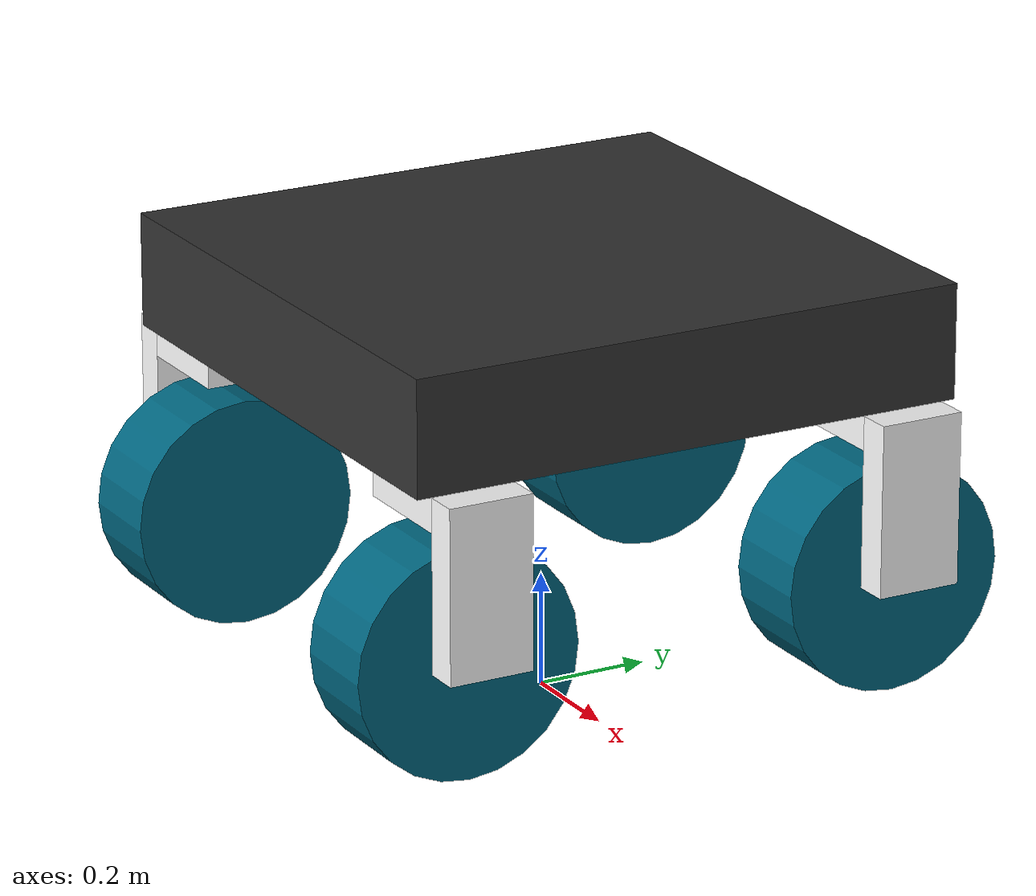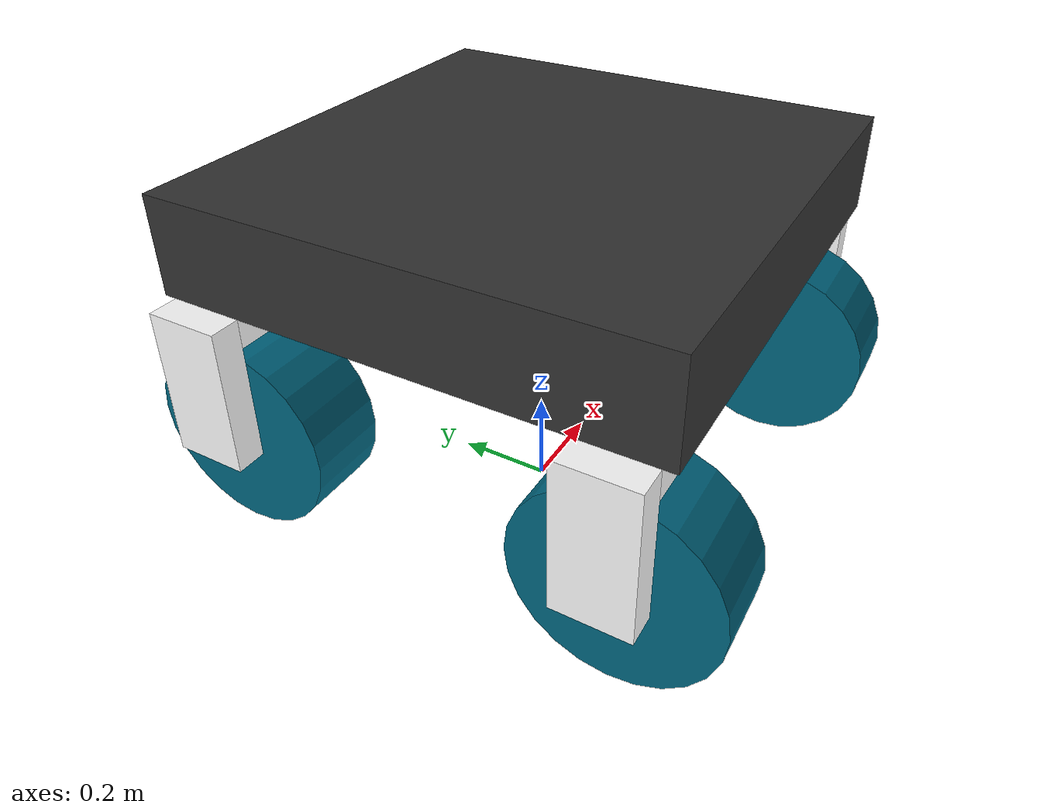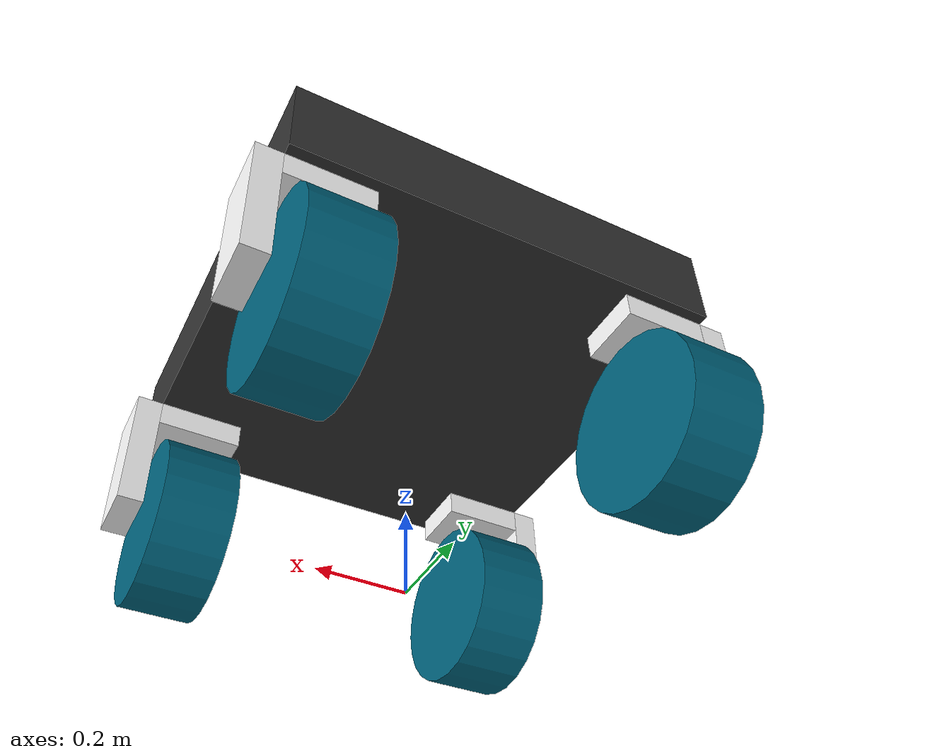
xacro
<?xml version="1.0"?>

<robot name="rover2" xmlns:xacro="http://www.ros.org/wiki/xacro" >
    <xacro:property name="r" value="0.2"/>
    <xacro:property name="h" value="0.2"/>
    <xacro:property name="wheel_mass" value="10"/>
    <xacro:property name="motor_mass" value="3"/>
    <xacro:property name="wheel_support1_length" value="0.3"/>
    <xacro:property name="wheel_support2_length" value="0.2"/>
    <xacro:property name="chassis_length" value="1"/>
    <xacro:property name="pi" value="3.1415926535897931"/>
    <xacro:property name="orientation_part_1" value="${pi/2} 0 ${pi/2}"/>
    <xacro:property name="orientation_part_2" value="0 0 ${pi/2}"/>
    <xacro:property name="wheel_orientation" value="0 0 ${pi/2}"/>

    <link name="base_link">
        <inertial>
            <origin xyz="0.0 0.0 0.0" rpy="0.0 0.0 0.0"/>
            <mass value="60"/>
            <inertia ixx="1.0" ixy="0.0" ixz="0.0" iyy="1.0" iyz="0.0" izz="1.0"/>
        </inertial>

        <visual >
            <origin xyz="0.0 0.0 0.68" rpy="0.0 0.0 0.0"/>
            <geometry>
                <box size="1 1 0.2"/>
            </geometry>

            <material name="grey">
                <color rgba="0.2 0.2 0.2 1.0"/>
            </material>

        </visual>

        <collision>
            <origin xyz="0.0 0.0 0.68" rpy="0.0 0.0 0.0"/>
            <geometry>
                <box size="1 1 0.3"/>
            </geometry>
        </collision>

    </link>

    <xacro:macro name="wheel_support" params="name2 name1 wheel_name joint_name pos1 pos2 dir motor_joint joint_support_motor" >

        <link name="${name2}">

            <inertial>
                <origin xyz="0.0 0.0 0.0" rpy="${orientation_part_2}"/>
                <mass value="${motor_mass}"/>
                <inertia  ixx="0.0" ixy = "0" ixz = "0" iyy="0" iyz = "0" izz="0"/>
            </inertial>

            <visual>
                <origin xyz="0.0 0.0 0.0" rpy="${orientation_part_2}"/>
                <geometry>
                    <box size="0.15 ${wheel_support2_length} 0.06"/>
                </geometry>
                <material name="white">
                    <color rgba="1.0 1.0 1.0 1.0"/>
                </material>
            </visual>

            <collision>
                <geometry>
                    <box size="0.15 ${wheel_support2_length} 0.06"/>
                </geometry>
            </collision>

        </link>

        <link name="${name1}">

            <inertial>
                <origin xyz="0.0 0.0 0.0" rpy="${orientation_part_1}"/>
                <mass value="${motor_mass}"/>
                <inertia  ixx="0.0" ixy = "0" ixz = "0" iyy="0" iyz = "0" izz="0"/>
            </inertial>

            <visual>
                <origin rpy="${orientation_part_1}"/>
                <geometry>
                    <box size="0.15 ${wheel_support1_length} 0.06"/>
                </geometry>
                <material name="white">
                    <color rgba="1.0 1.0 1.0 1.0"/>
                </material>
            </visual>

            <collision>
                <geometry>
                    <box size="0.15 ${wheel_support1_length} 0.06"/>
                </geometry>
            </collision>

        </link>

        <!--Wheel connected by a continuous joint-->

        <link name="${wheel_name}">

            <inertial>
                <origin xyz="0.0 0.0 0.0" rpy="0.0 ${pi/2} ${pi/2}"/>
                <mass value="${wheel_mass}"/>
                <inertia  ixx="${wheel_mass*(3*r*r+h*h)/12}" ixy = "0" ixz = "0" iyy="${wheel_mass*(3*r*r+h*h)/12}" iyz = "0" izz="${wheel_mass*r*r/2}"/>
            </inertial>

            <visual>
                <origin xyz="0.0 0.0 0.0" rpy="0.0 ${pi/2} ${pi/2}"/>
                <geometry>
                    <cylinder radius="${r}" length="${h/1.2}"/>
                </geometry>
                <material name="dark_blue">
                    <color rgba="0.0 0.4 0.5 1.0"/>
                </material>
            </visual>

            <collision>
                <origin xyz="0.0 0.0 0.0" rpy="0.0 ${pi/2} ${pi/2}"/>
                <geometry>
                    <cylinder radius="${r}" length="${h/18}"/>
                </geometry>
            </collision>

        </link>

        <!--JOINT SECTION-->

        <joint name="${motor_joint}" type="continuous">
            <parent link="${name1}"/>
            <child link="${wheel_name}"/>
            <axis xyz="0 1 0"/>
            <origin xyz="${-(wheel_support2_length/2)-0.03} 0 ${-(wheel_support1_length/2)}" rpy="${wheel_orientation}"/>
            <limit effort="30.0" velocity="100.0"/>
        </joint>

        <joint name="${joint_name}" type="revolute">
            <origin xyz="${pos1} ${pos2} 0.55" rpy="0.0 0.0 ${dir}"/>
            <parent link="base_link"/>
            <child link="${name2}"/>
            <axis xyz="0 0 1"/>
            <limit lower="-3.14" upper="3.14" effort="10.0" velocity="10.0"/>
        </joint>

        <joint name="${joint_support_motor}" type="fixed">
                <parent link="${name2}"/>
                <child link="${name1}"/>
                <origin xyz="${(wheel_support2_length/2)+0.03} 0.0 ${-(wheel_support1_length/2)+0.03}" rpy="0.0 0.0 0.0"/>
        </joint>

        <gazebo reference="${wheel_name}">
            <mu1 value="1.0"/>
            <mu2 value="1.0"/>
            <kp  value="10000000.0" />
            <kd  value="1.0" />
            <fdir1 value="1 0 0"/>
            <material>Gazebo/Blue</material>
        </gazebo>

        <transmission name="${motor_joint}_transmission">
            <type>transmission_interface/SimpleTransmission</type>
            <joint name="${motor_joint}">
            <hardwareInterface>hardware_interface/EffortJointInterface</hardwareInterface>
            </joint>
            <actuator name="${wheel_name}_motor">
                <hardwareInterface>hardware_interface/EffortJointInterface</hardwareInterface>
                <mechanicalReduction>10</mechanicalReduction>
            </actuator>
        </transmission>

        <transmission name="${joint_name}_transmission">
            <type>transmission_interface/SimpleTransmission</type>
            <joint name="${joint_name}">
            <hardwareInterface>hardware_interface/EffortJointInterface</hardwareInterface>
            </joint>
            <actuator name="${name2}_motor">
                <hardwareInterface>hardware_interface/EffortJointInterface</hardwareInterface>
                <mechanicalReduction>1</mechanicalReduction>
            </actuator>
        </transmission>

    </xacro:macro>

    <xacro:wheel_support name1="support_right_front_1" name2="support_right_front_2" wheel_name="wheel_right_front" joint_name="steering_right_front" pos1="+0.4" pos2="0.4" dir="0" motor_joint="motor_right_front" joint_support_motor="joint1"/>
    <xacro:wheel_support name1="support_left_front_1" name2="support_left_front_2" wheel_name="wheel_left_front"  joint_name="steering_left_front" pos1="-0.4" pos2="0.4" dir="${pi}" motor_joint="motor_left_front" joint_support_motor="joint2"/>
    <xacro:wheel_support name1="support_right_rear_1" name2="support_right_rear_2" wheel_name="wheel_right_rear" joint_name="steering_right_rear" pos1="+0.4" pos2="-0.4" dir="0" motor_joint="motor_right_rear" joint_support_motor="joint3"/>
    <xacro:wheel_support name1="support_left_rear_1" name2="support_left_rear_2" wheel_name="wheel_left_rear"  joint_name="steering_left_rear" pos1="-0.4" pos2="-0.4" dir="${pi}" motor_joint="motor_left_rear" joint_support_motor="joint4"/>

    <gazebo>
        <plugin name="gazebo_ros_control" filename="libgazebo_ros_control.so">
            <robotNamespace>/rover2</robotNamespace>
            <legacyModeNS>true</legacyModeNS>
        </plugin>
    </gazebo>

</robot>
